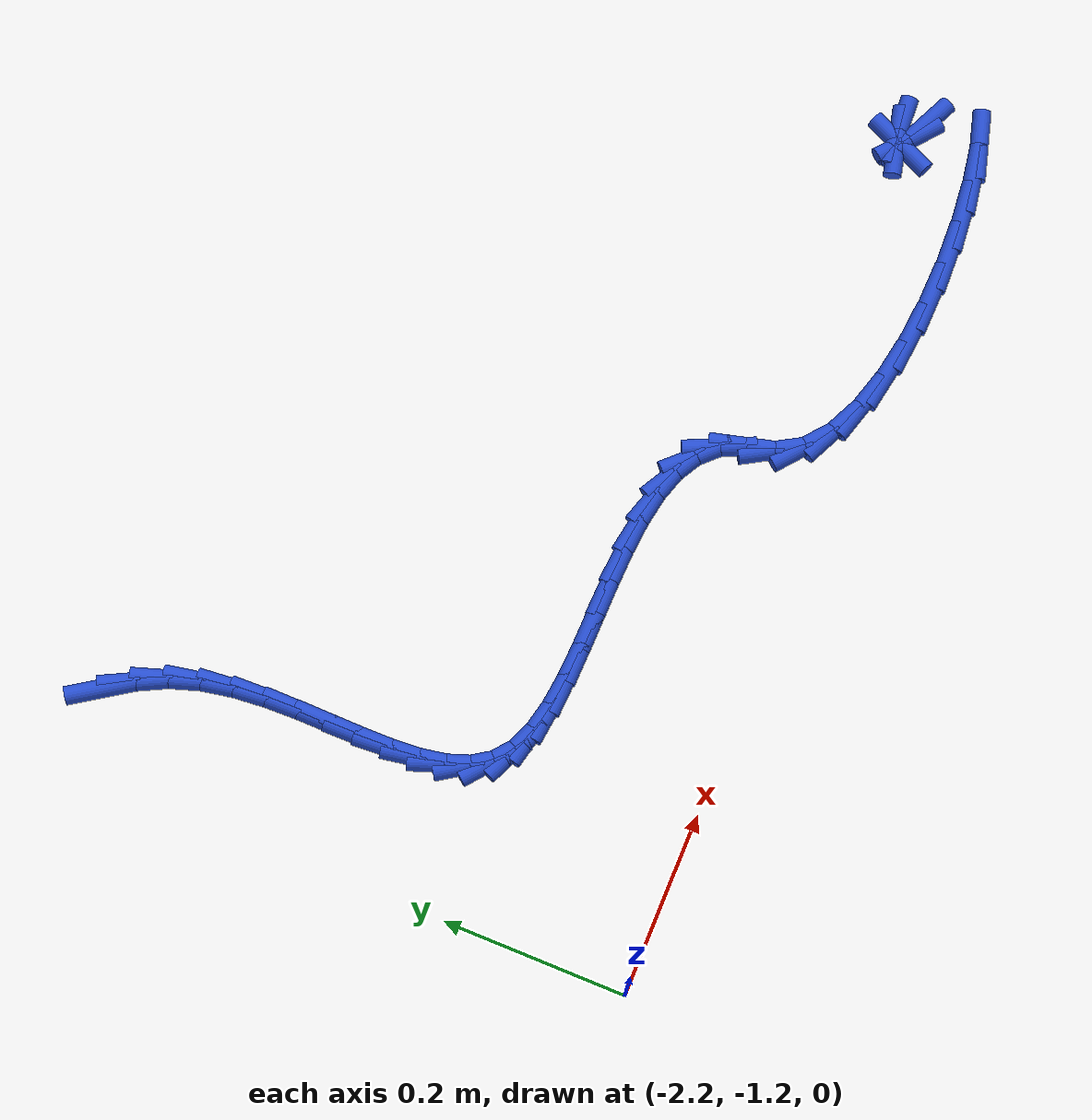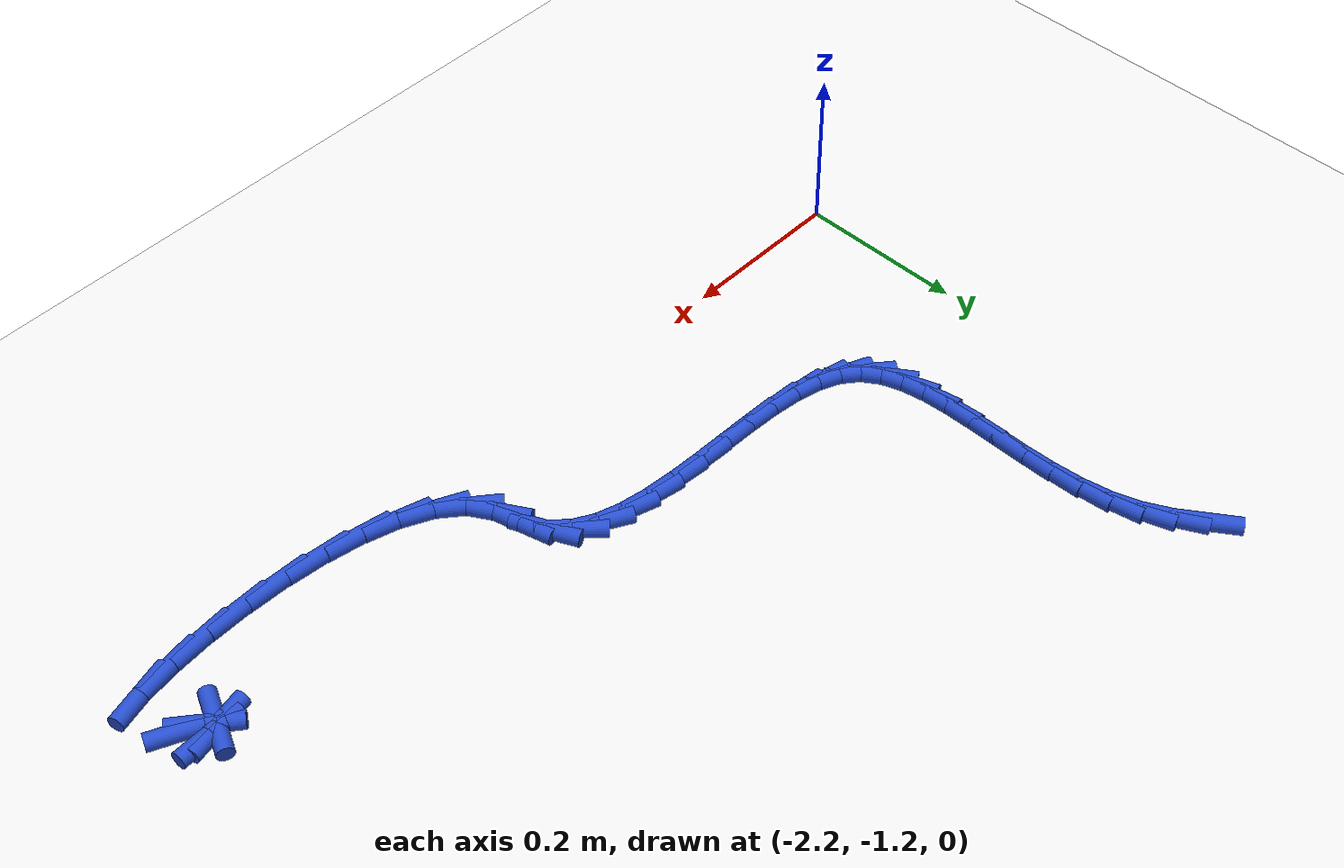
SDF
<sdf version="1.6">
 <world name="default">
  <model name="ground_plane">
   <static>1</static>
   <link name="link">
    <collision name="collision">
     <geometry><plane><normal>0 0 1</normal><size>100 100</size></plane></geometry>
     <surface><friction><ode><mu>100</mu><mu2>50</mu2></ode></friction></surface>
    </collision>
    <visual name="visual">
     <cast_shadows>0</cast_shadows>
     <geometry><plane><normal>0 0 1</normal><size>100 100</size></plane></geometry>
     <material>
      <script><uri>file://media/materials/scripts/gazebo.material</uri><name>Gazebo/WhiteGlow</name></script>
     </material>
    </visual>
   </link>
  </model>
  <model name="line">
   <link name="link_153">
    <pose>-2.111585146366402 -0.5794745592777831 0.01 0 1.57 -0.9797542369042741</pose>
    <collision name="collision">
     <geometry><cylinder><radius>0.01</radius><length>0.08</length></cylinder></geometry>
    </collision>
    <visual name="visual">
     <material>
      <script><name>Gazebo/Blue</name><uri>file://media/materials/scripts/gazebo.material</uri></script>
     </material>
     <geometry><cylinder><radius>0.01</radius><length>0.08</length></cylinder></geometry>
    </visual>
   </link>
   <link name="link_154">
    <pose>-2.092523588744142 -0.6078794533584244 0.01 0 1.57 -1.1022586291157956</pose>
    <collision name="collision">
     <geometry><cylinder><radius>0.01</radius><length>0.08</length></cylinder></geometry>
    </collision>
    <visual name="visual">
     <material>
      <script><name>Gazebo/Blue</name><uri>file://media/materials/scripts/gazebo.material</uri></script>
     </material>
     <geometry><cylinder><radius>0.01</radius><length>0.08</length></cylinder></geometry>
    </visual>
   </link>
   <link name="link_155">
    <pose>-2.077151724075733 -0.638250971116699 0.01 0 1.57 -1.2538406139882525</pose>
    <collision name="collision">
     <geometry><cylinder><radius>0.01</radius><length>0.08</length></cylinder></geometry>
    </collision>
    <visual name="visual">
     <material>
      <script><name>Gazebo/Blue</name><uri>file://media/materials/scripts/gazebo.material</uri></script>
     </material>
     <geometry><cylinder><radius>0.01</radius><length>0.08</length></cylinder></geometry>
    </visual>
   </link>
   <link name="link_156">
    <pose>-2.066472921160473 -0.6708068884108166 0.01 0 1.57 -1.3853377473175026</pose>
    <collision name="collision">
     <geometry><cylinder><radius>0.01</radius><length>0.08</length></cylinder></geometry>
    </collision>
    <visual name="visual">
     <material>
      <script><name>Gazebo/Blue</name><uri>file://media/materials/scripts/gazebo.material</uri></script>
     </material>
     <geometry><cylinder><radius>0.01</radius><length>0.08</length></cylinder></geometry>
    </visual>
   </link>
   <link name="link_157">
    <pose>-2.0600342543146066 -0.7051254838240513 0.01 0 1.57 -1.480665666010287</pose>
    <collision name="collision">
     <geometry><cylinder><radius>0.01</radius><length>0.08</length></cylinder></geometry>
    </collision>
    <visual name="visual">
     <material>
      <script><name>Gazebo/Blue</name><uri>file://media/materials/scripts/gazebo.material</uri></script>
     </material>
     <geometry><cylinder><radius>0.01</radius><length>0.08</length></cylinder></geometry>
    </visual>
   </link>
   <link name="link_158">
    <pose>-2.056833310964825 -0.7405437417697347 0.01 0 1.57 -1.5438425830779594</pose>
    <collision name="collision">
     <geometry><cylinder><radius>0.01</radius><length>0.08</length></cylinder></geometry>
    </collision>
    <visual name="visual">
     <material>
      <script><name>Gazebo/Blue</name><uri>file://media/materials/scripts/gazebo.material</uri></script>
     </material>
     <geometry><cylinder><radius>0.01</radius><length>0.08</length></cylinder></geometry>
    </visual>
   </link>
   <link name="link_159">
    <pose>-2.0558666649422337 -0.7763982015646737 0.01 0 1.57 1.5633800750444413</pose>
    <collision name="collision">
     <geometry><cylinder><radius>0.01</radius><length>0.08</length></cylinder></geometry>
    </collision>
    <visual name="visual">
     <material>
      <script><name>Gazebo/Blue</name><uri>file://media/materials/scripts/gazebo.material</uri></script>
     </material>
     <geometry><cylinder><radius>0.01</radius><length>0.08</length></cylinder></geometry>
    </visual>
   </link>
   <link name="link_160">
    <pose>-2.0561308900779394 -0.8120254025256742 0.01 0 1.57 1.556642984998026</pose>
    <collision name="collision">
     <geometry><cylinder><radius>0.01</radius><length>0.08</length></cylinder></geometry>
    </collision>
    <visual name="visual">
     <material>
      <script><name>Gazebo/Blue</name><uri>file://media/materials/scripts/gazebo.material</uri></script>
     </material>
     <geometry><cylinder><radius>0.01</radius><length>0.08</length></cylinder></geometry>
    </visual>
   </link>
   <link name="link_161">
    <pose>-2.056622560203049 -0.8467618839695433 0.01 0 1.57 -1.5622283828418746</pose>
    <collision name="collision">
     <geometry><cylinder><radius>0.01</radius><length>0.08</length></cylinder></geometry>
    </collision>
    <visual name="visual">
     <material>
      <script><name>Gazebo/Blue</name><uri>file://media/materials/scripts/gazebo.material</uri></script>
     </material>
     <geometry><cylinder><radius>0.01</radius><length>0.08</length></cylinder></geometry>
    </visual>
   </link>
   <link name="link_162">
    <pose>-2.056338249148668 -0.8799441852130874 0.01 0 1.57 -1.5042472062736694</pose>
    <collision name="collision">
     <geometry><cylinder><radius>0.01</radius><length>0.08</length></cylinder></geometry>
    </collision>
    <visual name="visual">
     <material>
      <script><name>Gazebo/Blue</name><uri>file://media/materials/scripts/gazebo.material</uri></script>
     </material>
     <geometry><cylinder><radius>0.01</radius><length>0.08</length></cylinder></geometry>
    </visual>
   </link>
   <link name="link_163">
    <pose>-2.054274530745905 -0.9109088455731125 0.01 0 1.57 -1.3999034681805254</pose>
    <collision name="collision">
     <geometry><cylinder><radius>0.01</radius><length>0.08</length></cylinder></geometry>
    </collision>
    <visual name="visual">
     <material>
      <script><name>Gazebo/Blue</name><uri>file://media/materials/scripts/gazebo.material</uri></script>
     </material>
     <geometry><cylinder><radius>0.01</radius><length>0.08</length></cylinder></geometry>
    </visual>
   </link>
   <link name="link_164">
    <pose>-2.049427978825865 -0.9389924043664256 0.01 0 1.57 -1.2325191123393084</pose>
    <collision name="collision">
     <geometry><cylinder><radius>0.01</radius><length>0.08</length></cylinder></geometry>
    </collision>
    <visual name="visual">
     <material>
      <script><name>Gazebo/Blue</name><uri>file://media/materials/scripts/gazebo.material</uri></script>
     </material>
     <geometry><cylinder><radius>0.01</radius><length>0.08</length></cylinder></geometry>
    </visual>
   </link>
   <link name="link_165">
    <pose>-2.0407951672196556 -0.9635314009098341 0.01 0 1.57 -0.9872844056804551</pose>
    <collision name="collision">
     <geometry><cylinder><radius>0.01</radius><length>0.08</length></cylinder></geometry>
    </collision>
    <visual name="visual">
     <material>
      <script><name>Gazebo/Blue</name><uri>file://media/materials/scripts/gazebo.material</uri></script>
     </material>
     <geometry><cylinder><radius>0.01</radius><length>0.08</length></cylinder></geometry>
    </visual>
   </link>
   <link name="link_166">
    <pose>-2.027372669758382 -0.9838623745201426 0.01 0 1.57 -0.6790282932008175</pose>
    <collision name="collision">
     <geometry><cylinder><radius>0.01</radius><length>0.08</length></cylinder></geometry>
    </collision>
    <visual name="visual">
     <material>
      <script><name>Gazebo/Blue</name><uri>file://media/materials/scripts/gazebo.material</uri></script>
     </material>
     <geometry><cylinder><radius>0.01</radius><length>0.08</length></cylinder></geometry>
    </visual>
   </link>
   <link name="link_167">
    <pose>-2.008187887268341 -0.999345558713396 0.01 0 1.57 -0.40467496608534975</pose>
    <collision name="collision">
     <geometry><cylinder><radius>0.01</radius><length>0.08</length></cylinder></geometry>
    </collision>
    <visual name="visual">
     <material>
      <script><name>Gazebo/Blue</name><uri>file://media/materials/scripts/gazebo.material</uri></script>
     </material>
     <geometry><cylinder><radius>0.01</radius><length>0.08</length></cylinder></geometry>
    </visual>
   </link>
   <link name="link_168">
    <pose>-1.9831923729513141 -1.0100515076313363 0.01 0 1.57 -0.224905048171168</pose>
    <collision name="collision">
     <geometry><cylinder><radius>0.01</radius><length>0.08</length></cylinder></geometry>
    </collision>
    <visual name="visual">
     <material>
      <script><name>Gazebo/Blue</name><uri>file://media/materials/scripts/gazebo.material</uri></script>
     </material>
     <geometry><cylinder><radius>0.01</radius><length>0.08</length></cylinder></geometry>
    </visual>
   </link>
   <link name="link_169">
    <pose>-1.9533999767693215 -1.016867276373148 0.01 0 1.57 -0.1145933373800954</pose>
    <collision name="collision">
     <geometry><cylinder><radius>0.01</radius><length>0.08</length></cylinder></geometry>
    </collision>
    <visual name="visual">
     <material>
      <script><name>Gazebo/Blue</name><uri>file://media/materials/scripts/gazebo.material</uri></script>
     </material>
     <geometry><cylinder><radius>0.01</radius><length>0.08</length></cylinder></geometry>
    </visual>
   </link>
   <link name="link_170">
    <pose>-1.9198831727567067 -1.0207249795853797 0.01 0 1.57 -0.050601396998650176</pose>
    <collision name="collision">
     <geometry><cylinder><radius>0.01</radius><length>0.08</length></cylinder></geometry>
    </collision>
    <visual name="visual">
     <material>
      <script><name>Gazebo/Blue</name><uri>file://media/materials/scripts/gazebo.material</uri></script>
     </material>
     <geometry><cylinder><radius>0.01</radius><length>0.08</length></cylinder></geometry>
    </visual>
   </link>
   <link name="link_171">
    <pose>-1.8837144349478148 -1.0225567319145799 0.01 0 1.57 -0.019545890034526076</pose>
    <collision name="collision">
     <geometry><cylinder><radius>0.01</radius><length>0.08</length></cylinder></geometry>
    </collision>
    <visual name="visual">
     <material>
      <script><name>Gazebo/Blue</name><uri>file://media/materials/scripts/gazebo.material</uri></script>
     </material>
     <geometry><cylinder><radius>0.01</radius><length>0.08</length></cylinder></geometry>
    </visual>
   </link>
   <link name="link_172">
    <pose>-1.8459662373769878 -1.023294648007296 0.01 0 1.57 -0.01506072869696768</pose>
    <collision name="collision">
     <geometry><cylinder><radius>0.01</radius><length>0.08</length></cylinder></geometry>
    </collision>
    <visual name="visual">
     <material>
      <script><name>Gazebo/Blue</name><uri>file://media/materials/scripts/gazebo.material</uri></script>
     </material>
     <geometry><cylinder><radius>0.01</radius><length>0.08</length></cylinder></geometry>
    </visual>
   </link>
   <link name="link_173">
    <pose>-1.807711054078572 -1.0238708425100764 0.01 0 1.57 -0.03571307809735546</pose>
    <collision name="collision">
     <geometry><cylinder><radius>0.01</radius><length>0.08</length></cylinder></geometry>
    </collision>
    <visual name="visual">
     <material>
      <script><name>Gazebo/Blue</name><uri>file://media/materials/scripts/gazebo.material</uri></script>
     </material>
     <geometry><cylinder><radius>0.01</radius><length>0.08</length></cylinder></geometry>
    </visual>
   </link>
   <link name="link_174">
    <pose>-1.7700213590869103 -1.0252174300694696 0.01 0 1.57 -0.08437475810510507</pose>
    <collision name="collision">
     <geometry><cylinder><radius>0.01</radius><length>0.08</length></cylinder></geometry>
    </collision>
    <visual name="visual">
     <material>
      <script><name>Gazebo/Blue</name><uri>file://media/materials/scripts/gazebo.material</uri></script>
     </material>
     <geometry><cylinder><radius>0.01</radius><length>0.08</length></cylinder></geometry>
    </visual>
   </link>
   <link name="link_175">
    <pose>-1.7339696264363464 -1.0282665253320236 0.01 0 1.57 -0.1688477023333582</pose>
    <collision name="collision">
     <geometry><cylinder><radius>0.01</radius><length>0.08</length></cylinder></geometry>
    </collision>
    <visual name="visual">
     <material>
      <script><name>Gazebo/Blue</name><uri>file://media/materials/scripts/gazebo.material</uri></script>
     </material>
     <geometry><cylinder><radius>0.01</radius><length>0.08</length></cylinder></geometry>
    </visual>
   </link>
   <link name="link_176">
    <pose>-1.700628330161225 -1.0339502429442868 0.01 0 1.57 -0.3032996411383591</pose>
    <collision name="collision">
     <geometry><cylinder><radius>0.01</radius><length>0.08</length></cylinder></geometry>
    </collision>
    <visual name="visual">
     <material>
      <script><name>Gazebo/Blue</name><uri>file://media/materials/scripts/gazebo.material</uri></script>
     </material>
     <geometry><cylinder><radius>0.01</radius><length>0.08</length></cylinder></geometry>
    </visual>
   </link>
   <link name="link_177">
    <pose>-1.671069944295889 -1.0432006975528068 0.01 0 1.57 -0.5078843851894231</pose>
    <collision name="collision">
     <geometry><cylinder><radius>0.01</radius><length>0.08</length></cylinder></geometry>
    </collision>
    <visual name="visual">
     <material>
      <script><name>Gazebo/Blue</name><uri>file://media/materials/scripts/gazebo.material</uri></script>
     </material>
     <geometry><cylinder><radius>0.01</radius><length>0.08</length></cylinder></geometry>
    </visual>
   </link>
   <link name="link_178">
    <pose>-1.6463669428746834 -1.056950003804132 0.01 0 1.57 -0.7960715866305907</pose>
    <collision name="collision">
     <geometry><cylinder><radius>0.01</radius><length>0.08</length></cylinder></geometry>
    </collision>
    <visual name="visual">
     <material>
      <script><name>Gazebo/Blue</name><uri>file://media/materials/scripts/gazebo.material</uri></script>
     </material>
     <geometry><cylinder><radius>0.01</radius><length>0.08</length></cylinder></geometry>
    </visual>
   </link>
   <link name="link_179">
    <pose>-1.627591799931952 -1.0761302763448108 0.01 0 1.57 -1.138504662489431</pose>
    <collision name="collision">
     <geometry><cylinder><radius>0.01</radius><length>0.08</length></cylinder></geometry>
    </collision>
    <visual name="visual">
     <material>
      <script><name>Gazebo/Blue</name><uri>file://media/materials/scripts/gazebo.material</uri></script>
     </material>
     <geometry><cylinder><radius>0.01</radius><length>0.08</length></cylinder></geometry>
    </visual>
   </link>
   <link name="link_180">
    <pose>-1.6158086004750876 -1.1016683347188225 0.01 0 1.57 -1.3187603389930405</pose>
    <collision name="collision">
     <geometry><cylinder><radius>0.01</radius><length>0.08</length></cylinder></geometry>
    </collision>
    <visual name="visual">
     <material>
      <script><name>Gazebo/Blue</name><uri>file://media/materials/scripts/gazebo.material</uri></script>
     </material>
     <geometry><cylinder><radius>0.01</radius><length>0.08</length></cylinder></geometry>
    </visual>
   </link>
   <link name="link_181">
    <pose>-1.6080170082211025 -1.1319255605782785 0.01 0 1.57 -1.0433546736627983</pose>
    <collision name="collision">
     <geometry><cylinder><radius>0.01</radius><length>0.08</length></cylinder></geometry>
    </collision>
    <visual name="visual">
     <material>
      <script><name>Gazebo/Blue</name><uri>file://media/materials/scripts/gazebo.material</uri></script>
     </material>
     <geometry><cylinder><radius>0.01</radius><length>0.08</length></cylinder></geometry>
    </visual>
   </link>
   <link name="link_182">
    <pose>-1.592032803300361 -1.1593669376475766 0.01 0 1.57 -0.6838475496700867</pose>
    <collision name="collision">
     <geometry><cylinder><radius>0.01</radius><length>0.08</length></cylinder></geometry>
    </collision>
    <visual name="visual">
     <material>
      <script><name>Gazebo/Blue</name><uri>file://media/materials/scripts/gazebo.material</uri></script>
     </material>
     <geometry><cylinder><radius>0.01</radius><length>0.08</length></cylinder></geometry>
    </visual>
   </link>
   <link name="link_183">
    <pose>-1.5648820460582333 -1.1814960227340179 0.01 0 1.57 -0.4434598871739934</pose>
    <collision name="collision">
     <geometry><cylinder><radius>0.01</radius><length>0.08</length></cylinder></geometry>
    </collision>
    <visual name="visual">
     <material>
      <script><name>Gazebo/Blue</name><uri>file://media/materials/scripts/gazebo.material</uri></script>
     </material>
     <geometry><cylinder><radius>0.01</radius><length>0.08</length></cylinder></geometry>
    </visual>
   </link>
   <link name="link_184">
    <pose>-1.528704405185185 -1.1986809143145234 0.01 0 1.57 -0.2853603790643233</pose>
    <collision name="collision">
     <geometry><cylinder><radius>0.01</radius><length>0.08</length></cylinder></geometry>
    </collision>
    <visual name="visual">
     <material>
      <script><name>Gazebo/Blue</name><uri>file://media/materials/scripts/gazebo.material</uri></script>
     </material>
     <geometry><cylinder><radius>0.01</radius><length>0.08</length></cylinder></geometry>
    </visual>
   </link>
   <link name="link_185">
    <pose>-1.485668849600929 -1.211306124271568 0.01 0 1.57 -0.17524253308023177</pose>
    <collision name="collision">
     <geometry><cylinder><radius>0.01</radius><length>0.08</length></cylinder></geometry>
    </collision>
    <visual name="visual">
     <material>
      <script><name>Gazebo/Blue</name><uri>file://media/materials/scripts/gazebo.material</uri></script>
     </material>
     <geometry><cylinder><radius>0.01</radius><length>0.08</length></cylinder></geometry>
    </visual>
   </link>
   <link name="link_186">
    <pose>-1.437944348225177 -1.219756164487626 0.01 0 1.57 -0.09246975360409493</pose>
    <collision name="collision">
     <geometry><cylinder><radius>0.01</radius><length>0.08</length></cylinder></geometry>
    </collision>
    <visual name="visual">
     <material>
      <script><name>Gazebo/Blue</name><uri>file://media/materials/scripts/gazebo.material</uri></script>
     </material>
     <geometry><cylinder><radius>0.01</radius><length>0.08</length></cylinder></geometry>
    </visual>
   </link>
   <link name="link_187">
    <pose>-1.3876998699776413 -1.2244155468451716 0.01 0 1.57 -0.024764663147720512</pose>
    <collision name="collision">
     <geometry><cylinder><radius>0.01</radius><length>0.08</length></cylinder></geometry>
    </collision>
    <visual name="visual">
     <material>
      <script><name>Gazebo/Blue</name><uri>file://media/materials/scripts/gazebo.material</uri></script>
     </material>
     <geometry><cylinder><radius>0.01</radius><length>0.08</length></cylinder></geometry>
    </visual>
   </link>
   <link name="link_188">
    <pose>-1.3371043837780328 -1.2256687832266795 0.01 0 1.57 0.036238483459867174</pose>
    <collision name="collision">
     <geometry><cylinder><radius>0.01</radius><length>0.08</length></cylinder></geometry>
    </collision>
    <visual name="visual">
     <material>
      <script><name>Gazebo/Blue</name><uri>file://media/materials/scripts/gazebo.material</uri></script>
     </material>
     <geometry><cylinder><radius>0.01</radius><length>0.08</length></cylinder></geometry>
    </visual>
   </link>
   <link name="link_189">
    <pose>-1.288326858546067 -1.223900385514624 0.01 0 1.57 0.0980427917547511</pose>
    <collision name="collision">
     <geometry><cylinder><radius>0.01</radius><length>0.08</length></cylinder></geometry>
    </collision>
    <visual name="visual">
     <material>
      <script><name>Gazebo/Blue</name><uri>file://media/materials/scripts/gazebo.material</uri></script>
     </material>
     <geometry><cylinder><radius>0.01</radius><length>0.08</length></cylinder></geometry>
    </visual>
   </link>
   <link name="link_190">
    <pose>-1.2435362632014546 -1.2194948655914795 0.01 0 1.57 0.1706591903034422</pose>
    <collision name="collision">
     <geometry><cylinder><radius>0.01</radius><length>0.08</length></cylinder></geometry>
    </collision>
    <visual name="visual">
     <material>
      <script><name>Gazebo/Blue</name><uri>file://media/materials/scripts/gazebo.material</uri></script>
     </material>
     <geometry><cylinder><radius>0.01</radius><length>0.08</length></cylinder></geometry>
    </visual>
   </link>
   <link name="link_191">
    <pose>-1.2049015666639074 -1.2128367353397203 0.01 0 1.57 0.27421604330195565</pose>
    <collision name="collision">
     <geometry><cylinder><radius>0.01</radius><length>0.08</length></cylinder></geometry>
    </collision>
    <visual name="visual">
     <material>
      <script><name>Gazebo/Blue</name><uri>file://media/materials/scripts/gazebo.material</uri></script>
     </material>
     <geometry><cylinder><radius>0.01</radius><length>0.08</length></cylinder></geometry>
    </visual>
   </link>
   <link name="link_197">
    <pose>-1.2083967065376697 -1.1481463580490312 0.01 0 1.57 -0.4312793993137997</pose>
    <collision name="collision">
     <geometry><cylinder><radius>0.01</radius><length>0.08</length></cylinder></geometry>
    </collision>
    <visual name="visual">
     <material>
      <script><name>Gazebo/Blue</name><uri>file://media/materials/scripts/gazebo.material</uri></script>
     </material>
     <geometry><cylinder><radius>0.01</radius><length>0.08</length></cylinder></geometry>
    </visual>
   </link>
   <link name="link_198">
    <pose>-1.2274758459589958 -1.1393667022005887 0.01 0 1.57 -0.6794225732251852</pose>
    <collision name="collision">
     <geometry><cylinder><radius>0.01</radius><length>0.08</length></cylinder></geometry>
    </collision>
    <visual name="visual">
     <material>
      <script><name>Gazebo/Blue</name><uri>file://media/materials/scripts/gazebo.material</uri></script>
     </material>
     <geometry><cylinder><radius>0.01</radius><length>0.08</length></cylinder></geometry>
    </visual>
   </link>
   <link name="link_199">
    <pose>-1.2355021250662255 -1.132883822023535 0.01 0 1.57 1.1294465103612659</pose>
    <collision name="collision">
     <geometry><cylinder><radius>0.01</radius><length>0.08</length></cylinder></geometry>
    </collision>
    <visual name="visual">
     <material>
      <script><name>Gazebo/Blue</name><uri>file://media/materials/scripts/gazebo.material</uri></script>
     </material>
     <geometry><cylinder><radius>0.01</radius><length>0.08</length></cylinder></geometry>
    </visual>
   </link>
   <link name="link_200">
    <pose>-1.2334168745926015 -1.128469944821008 0.01 0 1.57 0.22470887131130074</pose>
    <collision name="collision">
     <geometry><cylinder><radius>0.01</radius><length>0.08</length></cylinder></geometry>
    </collision>
    <visual name="visual">
     <material>
      <script><name>Gazebo/Blue</name><uri>file://media/materials/scripts/gazebo.material</uri></script>
     </material>
     <geometry><cylinder><radius>0.01</radius><length>0.08</length></cylinder></geometry>
    </visual>
   </link>
   <link name="link_201">
    <pose>-1.2221614252713662 -1.1258972978961441 0.01 0 1.57 0.04918907810334206</pose>
    <collision name="collision">
     <geometry><cylinder><radius>0.01</radius><length>0.08</length></cylinder></geometry>
    </collision>
    <visual name="visual">
     <material>
      <script><name>Gazebo/Blue</name><uri>file://media/materials/scripts/gazebo.material</uri></script>
     </material>
     <geometry><cylinder><radius>0.01</radius><length>0.08</length></cylinder></geometry>
    </visual>
   </link>
  </model>
 </world>
</sdf>
